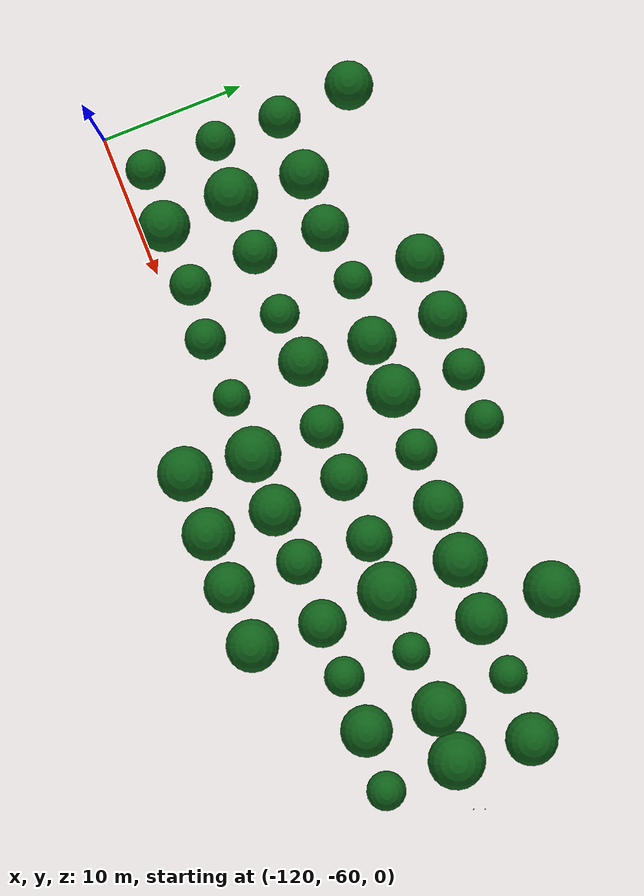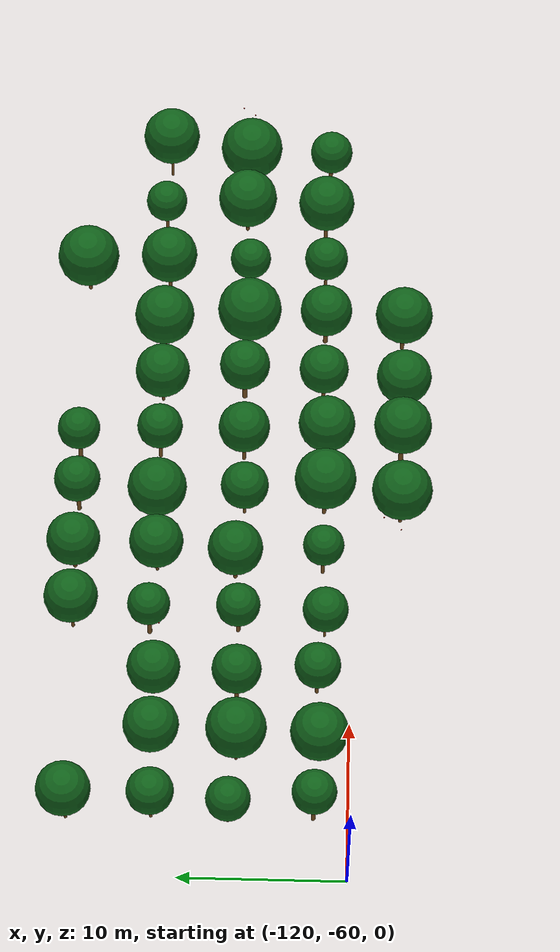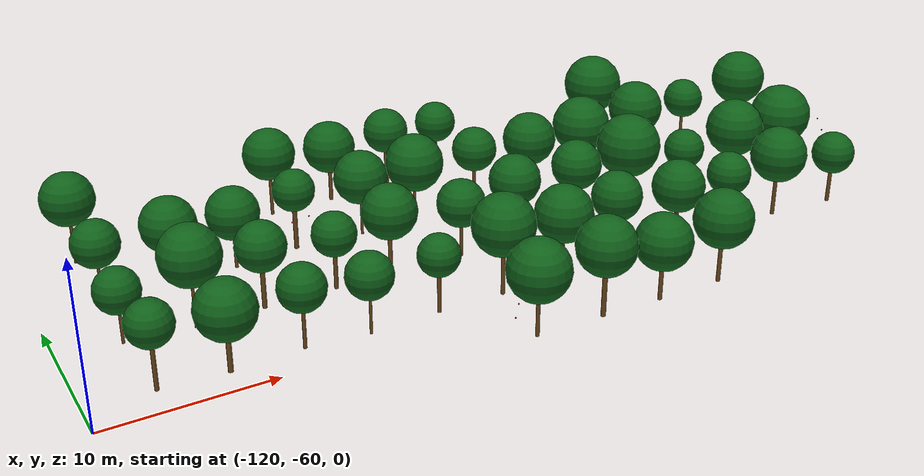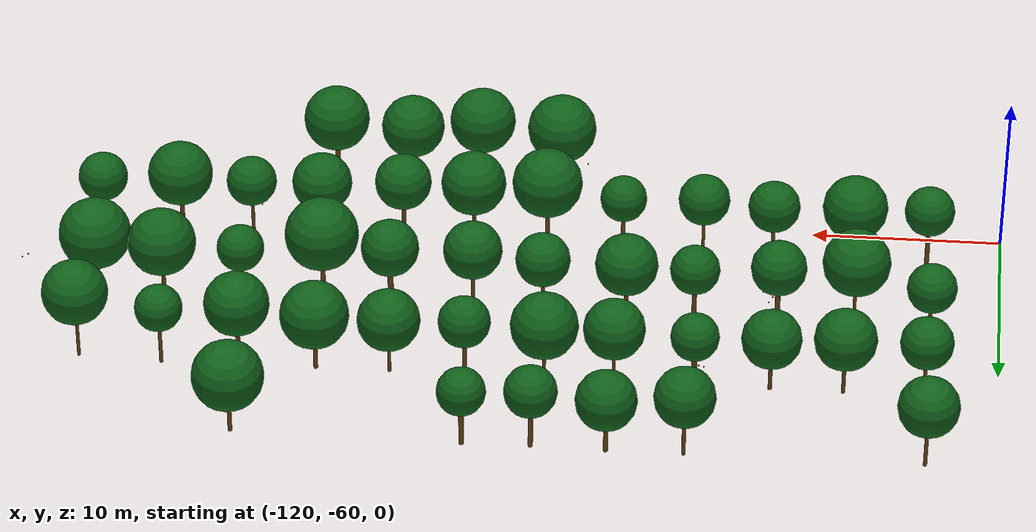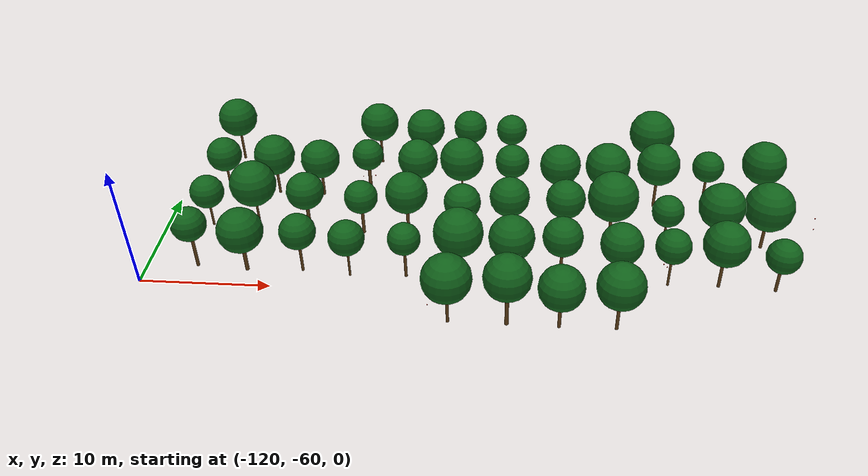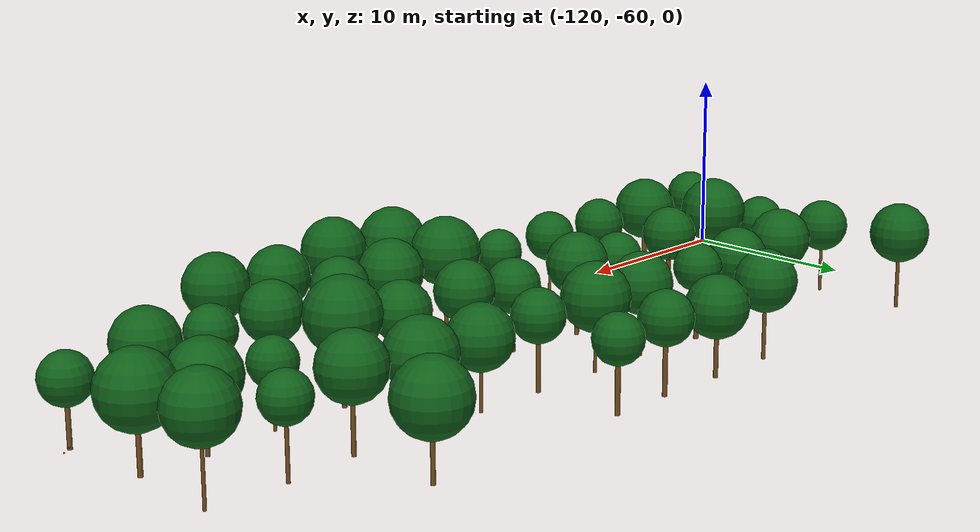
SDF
<sdf version="1.9">
 <world name="cheongsong_orchard">
  <model name="apple_tree_550">
   <static>true</static>
   <pose>-96.38 -62.93 0 0 0 0</pose>
   <link name="link">
    <collision name="trunk_col">
     <pose>0 0 1.17 0 0 0</pose>
     <geometry><cylinder><radius>0.112</radius><length>2.33</length></cylinder></geometry>
    </collision>
    <visual name="trunk_vis">
     <pose>0 0 1.17 0 0 0</pose>
     <geometry><cylinder><radius>0.112</radius><length>2.33</length></cylinder></geometry>
     <material><ambient>0.35 0.22 0.08 1</ambient><diffuse>0.45 0.30 0.12 1</diffuse></material>
    </visual>
    <collision name="canopy_col">
     <pose>0 0 4.16 0 0 0</pose>
     <geometry><sphere><radius>1.83</radius></sphere></geometry>
    </collision>
    <visual name="canopy_vis">
     <pose>0 0 4.16 0 0 0</pose>
     <geometry><sphere><radius>1.83</radius></sphere></geometry>
     <material><ambient>0.04 0.28 0.06 1</ambient><diffuse>0.06 0.38 0.10 1</diffuse></material>
    </visual>
   </link>
  </model>
  <model name="apple_tree_551">
   <static>true</static>
   <pose>-92.14 -62.93 0 0 0 0</pose>
   <link name="link">
    <collision name="trunk_col">
     <pose>0 0 1.36 0 0 0</pose>
     <geometry><cylinder><radius>0.144</radius><length>2.71</length></cylinder></geometry>
    </collision>
    <visual name="trunk_vis">
     <pose>0 0 1.36 0 0 0</pose>
     <geometry><cylinder><radius>0.144</radius><length>2.71</length></cylinder></geometry>
     <material><ambient>0.35 0.22 0.08 1</ambient><diffuse>0.45 0.30 0.12 1</diffuse></material>
    </visual>
    <collision name="canopy_col">
     <pose>0 0 4.47 0 0 0</pose>
     <geometry><sphere><radius>1.75</radius></sphere></geometry>
    </collision>
    <visual name="canopy_vis">
     <pose>0 0 4.47 0 0 0</pose>
     <geometry><sphere><radius>1.75</radius></sphere></geometry>
     <material><ambient>0.04 0.28 0.06 1</ambient><diffuse>0.06 0.38 0.10 1</diffuse></material>
    </visual>
   </link>
  </model>
  <model name="apple_tree_552">
   <static>true</static>
   <pose>-88.39 -63.00 0 0 0 0</pose>
   <link name="link">
    <collision name="trunk_col">
     <pose>0 0 1.03 0 0 0</pose>
     <geometry><cylinder><radius>0.126</radius><length>2.05</length></cylinder></geometry>
    </collision>
    <visual name="trunk_vis">
     <pose>0 0 1.03 0 0 0</pose>
     <geometry><cylinder><radius>0.126</radius><length>2.05</length></cylinder></geometry>
     <material><ambient>0.35 0.22 0.08 1</ambient><diffuse>0.45 0.30 0.12 1</diffuse></material>
    </visual>
    <collision name="canopy_col">
     <pose>0 0 3.74 0 0 0</pose>
     <geometry><sphere><radius>1.68</radius></sphere></geometry>
    </collision>
    <visual name="canopy_vis">
     <pose>0 0 3.74 0 0 0</pose>
     <geometry><sphere><radius>1.68</radius></sphere></geometry>
     <material><ambient>0.04 0.28 0.06 1</ambient><diffuse>0.06 0.38 0.10 1</diffuse></material>
    </visual>
   </link>
  </model>
  <model name="apple_tree_553">
   <static>true</static>
   <pose>-84.30 -62.96 0 0 0 0</pose>
   <link name="link">
    <collision name="trunk_col">
     <pose>0 0 1.18 0 0 0</pose>
     <geometry><cylinder><radius>0.123</radius><length>2.36</length></cylinder></geometry>
    </collision>
    <visual name="trunk_vis">
     <pose>0 0 1.18 0 0 0</pose>
     <geometry><cylinder><radius>0.123</radius><length>2.36</length></cylinder></geometry>
     <material><ambient>0.35 0.22 0.08 1</ambient><diffuse>0.45 0.30 0.12 1</diffuse></material>
    </visual>
    <collision name="canopy_col">
     <pose>0 0 4.11 0 0 0</pose>
     <geometry><sphere><radius>1.75</radius></sphere></geometry>
    </collision>
    <visual name="canopy_vis">
     <pose>0 0 4.11 0 0 0</pose>
     <geometry><sphere><radius>1.75</radius></sphere></geometry>
     <material><ambient>0.04 0.28 0.06 1</ambient><diffuse>0.06 0.38 0.10 1</diffuse></material>
    </visual>
   </link>
  </model>
  <model name="apple_tree_601">
   <static>true</static>
   <pose>-116.09 -57.98 0 0 0 0</pose>
   <link name="link">
    <collision name="trunk_col">
     <pose>0 0 1.37 0 0 0</pose>
     <geometry><cylinder><radius>0.123</radius><length>2.74</length></cylinder></geometry>
    </collision>
    <visual name="trunk_vis">
     <pose>0 0 1.37 0 0 0</pose>
     <geometry><cylinder><radius>0.123</radius><length>2.74</length></cylinder></geometry>
     <material><ambient>0.35 0.22 0.08 1</ambient><diffuse>0.45 0.30 0.12 1</diffuse></material>
    </visual>
    <collision name="canopy_col">
     <pose>0 0 4.07 0 0 0</pose>
     <geometry><sphere><radius>1.33</radius></sphere></geometry>
    </collision>
    <visual name="canopy_vis">
     <pose>0 0 4.07 0 0 0</pose>
     <geometry><sphere><radius>1.33</radius></sphere></geometry>
     <material><ambient>0.04 0.28 0.06 1</ambient><diffuse>0.06 0.38 0.10 1</diffuse></material>
    </visual>
   </link>
  </model>
  <model name="apple_tree_602">
   <static>true</static>
   <pose>-112.18 -58.22 0 0 0 0</pose>
   <link name="link">
    <collision name="trunk_col">
     <pose>0 0 1.06 0 0 0</pose>
     <geometry><cylinder><radius>0.146</radius><length>2.12</length></cylinder></geometry>
    </collision>
    <visual name="trunk_vis">
     <pose>0 0 1.06 0 0 0</pose>
     <geometry><cylinder><radius>0.146</radius><length>2.12</length></cylinder></geometry>
     <material><ambient>0.35 0.22 0.08 1</ambient><diffuse>0.45 0.30 0.12 1</diffuse></material>
    </visual>
    <collision name="canopy_col">
     <pose>0 0 3.85 0 0 0</pose>
     <geometry><sphere><radius>1.73</radius></sphere></geometry>
    </collision>
    <visual name="canopy_vis">
     <pose>0 0 3.85 0 0 0</pose>
     <geometry><sphere><radius>1.73</radius></sphere></geometry>
     <material><ambient>0.04 0.28 0.06 1</ambient><diffuse>0.06 0.38 0.10 1</diffuse></material>
    </visual>
   </link>
  </model>
  <model name="apple_tree_603">
   <static>true</static>
   <pose>-107.91 -58.05 0 0 0 0</pose>
   <link name="link">
    <collision name="trunk_col">
     <pose>0 0 1.21 0 0 0</pose>
     <geometry><cylinder><radius>0.105</radius><length>2.42</length></cylinder></geometry>
    </collision>
    <visual name="trunk_vis">
     <pose>0 0 1.21 0 0 0</pose>
     <geometry><cylinder><radius>0.105</radius><length>2.42</length></cylinder></geometry>
     <material><ambient>0.35 0.22 0.08 1</ambient><diffuse>0.45 0.30 0.12 1</diffuse></material>
    </visual>
    <collision name="canopy_col">
     <pose>0 0 3.80 0 0 0</pose>
     <geometry><sphere><radius>1.38</radius></sphere></geometry>
    </collision>
    <visual name="canopy_vis">
     <pose>0 0 3.80 0 0 0</pose>
     <geometry><sphere><radius>1.38</radius></sphere></geometry>
     <material><ambient>0.04 0.28 0.06 1</ambient><diffuse>0.06 0.38 0.10 1</diffuse></material>
    </visual>
   </link>
  </model>
  <model name="apple_tree_604">
   <static>true</static>
   <pose>-104.20 -58.45 0 0 0 0</pose>
   <link name="link">
    <collision name="trunk_col">
     <pose>0 0 1.16 0 0 0</pose>
     <geometry><cylinder><radius>0.083</radius><length>2.31</length></cylinder></geometry>
    </collision>
    <visual name="trunk_vis">
     <pose>0 0 1.16 0 0 0</pose>
     <geometry><cylinder><radius>0.083</radius><length>2.31</length></cylinder></geometry>
     <material><ambient>0.35 0.22 0.08 1</ambient><diffuse>0.45 0.30 0.12 1</diffuse></material>
    </visual>
    <collision name="canopy_col">
     <pose>0 0 3.68 0 0 0</pose>
     <geometry><sphere><radius>1.37</radius></sphere></geometry>
    </collision>
    <visual name="canopy_vis">
     <pose>0 0 3.68 0 0 0</pose>
     <geometry><sphere><radius>1.37</radius></sphere></geometry>
     <material><ambient>0.04 0.28 0.06 1</ambient><diffuse>0.06 0.38 0.10 1</diffuse></material>
    </visual>
   </link>
  </model>
  <model name="apple_tree_605">
   <static>true</static>
   <pose>-99.94 -58.27 0 0 0 0</pose>
   <link name="link">
    <collision name="trunk_col">
     <pose>0 0 1.20 0 0 0</pose>
     <geometry><cylinder><radius>0.112</radius><length>2.41</length></cylinder></geometry>
    </collision>
    <visual name="trunk_vis">
     <pose>0 0 1.20 0 0 0</pose>
     <geometry><cylinder><radius>0.112</radius><length>2.41</length></cylinder></geometry>
     <material><ambient>0.35 0.22 0.08 1</ambient><diffuse>0.45 0.30 0.12 1</diffuse></material>
    </visual>
    <collision name="canopy_col">
     <pose>0 0 3.65 0 0 0</pose>
     <geometry><sphere><radius>1.24</radius></sphere></geometry>
    </collision>
    <visual name="canopy_vis">
     <pose>0 0 3.65 0 0 0</pose>
     <geometry><sphere><radius>1.24</radius></sphere></geometry>
     <material><ambient>0.04 0.28 0.06 1</ambient><diffuse>0.06 0.38 0.10 1</diffuse></material>
    </visual>
   </link>
  </model>
  <model name="apple_tree_606">
   <static>true</static>
   <pose>-95.90 -58.30 0 0 0 0</pose>
   <link name="link">
    <collision name="trunk_col">
     <pose>0 0 1.32 0 0 0</pose>
     <geometry><cylinder><radius>0.116</radius><length>2.64</length></cylinder></geometry>
    </collision>
    <visual name="trunk_vis">
     <pose>0 0 1.32 0 0 0</pose>
     <geometry><cylinder><radius>0.116</radius><length>2.64</length></cylinder></geometry>
     <material><ambient>0.35 0.22 0.08 1</ambient><diffuse>0.45 0.30 0.12 1</diffuse></material>
    </visual>
    <collision name="canopy_col">
     <pose>0 0 4.50 0 0 0</pose>
     <geometry><sphere><radius>1.86</radius></sphere></geometry>
    </collision>
    <visual name="canopy_vis">
     <pose>0 0 4.50 0 0 0</pose>
     <geometry><sphere><radius>1.86</radius></sphere></geometry>
     <material><ambient>0.04 0.28 0.06 1</ambient><diffuse>0.06 0.38 0.10 1</diffuse></material>
    </visual>
   </link>
  </model>
  <model name="apple_tree_607">
   <static>true</static>
   <pose>-91.99 -58.33 0 0 0 0</pose>
   <link name="link">
    <collision name="trunk_col">
     <pose>0 0 1.24 0 0 0</pose>
     <geometry><cylinder><radius>0.092</radius><length>2.48</length></cylinder></geometry>
    </collision>
    <visual name="trunk_vis">
     <pose>0 0 1.24 0 0 0</pose>
     <geometry><cylinder><radius>0.092</radius><length>2.48</length></cylinder></geometry>
     <material><ambient>0.35 0.22 0.08 1</ambient><diffuse>0.45 0.30 0.12 1</diffuse></material>
    </visual>
    <collision name="canopy_col">
     <pose>0 0 4.20 0 0 0</pose>
     <geometry><sphere><radius>1.72</radius></sphere></geometry>
    </collision>
    <visual name="canopy_vis">
     <pose>0 0 4.20 0 0 0</pose>
     <geometry><sphere><radius>1.72</radius></sphere></geometry>
     <material><ambient>0.04 0.28 0.06 1</ambient><diffuse>0.06 0.38 0.10 1</diffuse></material>
    </visual>
   </link>
  </model>
  <model name="apple_tree_608">
   <static>true</static>
   <pose>-88.27 -58.10 0 0 0 0</pose>
   <link name="link">
    <collision name="trunk_col">
     <pose>0 0 1.38 0 0 0</pose>
     <geometry><cylinder><radius>0.116</radius><length>2.76</length></cylinder></geometry>
    </collision>
    <visual name="trunk_vis">
     <pose>0 0 1.38 0 0 0</pose>
     <geometry><cylinder><radius>0.116</radius><length>2.76</length></cylinder></geometry>
     <material><ambient>0.35 0.22 0.08 1</ambient><diffuse>0.45 0.30 0.12 1</diffuse></material>
    </visual>
    <collision name="canopy_col">
     <pose>0 0 4.27 0 0 0</pose>
     <geometry><sphere><radius>1.50</radius></sphere></geometry>
    </collision>
    <visual name="canopy_vis">
     <pose>0 0 4.27 0 0 0</pose>
     <geometry><sphere><radius>1.50</radius></sphere></geometry>
     <material><ambient>0.04 0.28 0.06 1</ambient><diffuse>0.06 0.38 0.10 1</diffuse></material>
    </visual>
   </link>
  </model>
  <model name="apple_tree_609">
   <static>true</static>
   <pose>-83.95 -58.18 0 0 0 0</pose>
   <link name="link">
    <collision name="trunk_col">
     <pose>0 0 1.15 0 0 0</pose>
     <geometry><cylinder><radius>0.141</radius><length>2.29</length></cylinder></geometry>
    </collision>
    <visual name="trunk_vis">
     <pose>0 0 1.15 0 0 0</pose>
     <geometry><cylinder><radius>0.141</radius><length>2.29</length></cylinder></geometry>
     <material><ambient>0.35 0.22 0.08 1</ambient><diffuse>0.45 0.30 0.12 1</diffuse></material>
    </visual>
    <collision name="canopy_col">
     <pose>0 0 3.88 0 0 0</pose>
     <geometry><sphere><radius>1.59</radius></sphere></geometry>
    </collision>
    <visual name="canopy_vis">
     <pose>0 0 3.88 0 0 0</pose>
     <geometry><sphere><radius>1.59</radius></sphere></geometry>
     <material><ambient>0.04 0.28 0.06 1</ambient><diffuse>0.06 0.38 0.10 1</diffuse></material>
    </visual>
   </link>
  </model>
  <model name="apple_tree_610">
   <static>true</static>
   <pose>-80.20 -58.13 0 0 0 0</pose>
   <link name="link">
    <collision name="trunk_col">
     <pose>0 0 1.22 0 0 0</pose>
     <geometry><cylinder><radius>0.090</radius><length>2.44</length></cylinder></geometry>
    </collision>
    <visual name="trunk_vis">
     <pose>0 0 1.22 0 0 0</pose>
     <geometry><cylinder><radius>0.090</radius><length>2.44</length></cylinder></geometry>
     <material><ambient>0.35 0.22 0.08 1</ambient><diffuse>0.45 0.30 0.12 1</diffuse></material>
    </visual>
    <collision name="canopy_col">
     <pose>0 0 3.77 0 0 0</pose>
     <geometry><sphere><radius>1.33</radius></sphere></geometry>
    </collision>
    <visual name="canopy_vis">
     <pose>0 0 3.77 0 0 0</pose>
     <geometry><sphere><radius>1.33</radius></sphere></geometry>
     <material><ambient>0.04 0.28 0.06 1</ambient><diffuse>0.06 0.38 0.10 1</diffuse></material>
    </visual>
   </link>
  </model>
  <model name="apple_tree_611">
   <static>true</static>
   <pose>-76.42 -58.08 0 0 0 0</pose>
   <link name="link">
    <collision name="trunk_col">
     <pose>0 0 1.21 0 0 0</pose>
     <geometry><cylinder><radius>0.121</radius><length>2.42</length></cylinder></geometry>
    </collision>
    <visual name="trunk_vis">
     <pose>0 0 1.21 0 0 0</pose>
     <geometry><cylinder><radius>0.121</radius><length>2.42</length></cylinder></geometry>
     <material><ambient>0.35 0.22 0.08 1</ambient><diffuse>0.45 0.30 0.12 1</diffuse></material>
    </visual>
    <collision name="canopy_col">
     <pose>0 0 4.13 0 0 0</pose>
     <geometry><sphere><radius>1.72</radius></sphere></geometry>
    </collision>
    <visual name="canopy_vis">
     <pose>0 0 4.13 0 0 0</pose>
     <geometry><sphere><radius>1.72</radius></sphere></geometry>
     <material><ambient>0.04 0.28 0.06 1</ambient><diffuse>0.06 0.38 0.10 1</diffuse></material>
    </visual>
   </link>
  </model>
  <model name="apple_tree_612">
   <static>true</static>
   <pose>-72.24 -58.34 0 0 0 0</pose>
   <link name="link">
    <collision name="trunk_col">
     <pose>0 0 1.04 0 0 0</pose>
     <geometry><cylinder><radius>0.121</radius><length>2.07</length></cylinder></geometry>
    </collision>
    <visual name="trunk_vis">
     <pose>0 0 1.04 0 0 0</pose>
     <geometry><cylinder><radius>0.121</radius><length>2.07</length></cylinder></geometry>
     <material><ambient>0.35 0.22 0.08 1</ambient><diffuse>0.45 0.30 0.12 1</diffuse></material>
    </visual>
    <collision name="canopy_col">
     <pose>0 0 3.38 0 0 0</pose>
     <geometry><sphere><radius>1.31</radius></sphere></geometry>
    </collision>
    <visual name="canopy_vis">
     <pose>0 0 3.38 0 0 0</pose>
     <geometry><sphere><radius>1.31</radius></sphere></geometry>
     <material><ambient>0.04 0.28 0.06 1</ambient><diffuse>0.06 0.38 0.10 1</diffuse></material>
    </visual>
   </link>
  </model>
  <model name="apple_tree_658">
   <static>true</static>
   <pose>-116.34 -52.97 0 0 0 0</pose>
   <link name="link">
    <collision name="trunk_col">
     <pose>0 0 1.00 0 0 0</pose>
     <geometry><cylinder><radius>0.087</radius><length>2.00</length></cylinder></geometry>
    </collision>
    <visual name="trunk_vis">
     <pose>0 0 1.00 0 0 0</pose>
     <geometry><cylinder><radius>0.087</radius><length>2.00</length></cylinder></geometry>
     <material><ambient>0.35 0.22 0.08 1</ambient><diffuse>0.45 0.30 0.12 1</diffuse></material>
    </visual>
    <collision name="canopy_col">
     <pose>0 0 3.33 0 0 0</pose>
     <geometry><sphere><radius>1.33</radius></sphere></geometry>
    </collision>
    <visual name="canopy_vis">
     <pose>0 0 3.33 0 0 0</pose>
     <geometry><sphere><radius>1.33</radius></sphere></geometry>
     <material><ambient>0.04 0.28 0.06 1</ambient><diffuse>0.06 0.38 0.10 1</diffuse></material>
    </visual>
   </link>
  </model>
  <model name="apple_tree_659">
   <static>true</static>
   <pose>-112.36 -53.34 0 0 0 0</pose>
   <link name="link">
    <collision name="trunk_col">
     <pose>0 0 1.38 0 0 0</pose>
     <geometry><cylinder><radius>0.087</radius><length>2.77</length></cylinder></geometry>
    </collision>
    <visual name="trunk_vis">
     <pose>0 0 1.38 0 0 0</pose>
     <geometry><cylinder><radius>0.087</radius><length>2.77</length></cylinder></geometry>
     <material><ambient>0.35 0.22 0.08 1</ambient><diffuse>0.45 0.30 0.12 1</diffuse></material>
    </visual>
    <collision name="canopy_col">
     <pose>0 0 4.56 0 0 0</pose>
     <geometry><sphere><radius>1.80</radius></sphere></geometry>
    </collision>
    <visual name="canopy_vis">
     <pose>0 0 4.56 0 0 0</pose>
     <geometry><sphere><radius>1.80</radius></sphere></geometry>
     <material><ambient>0.04 0.28 0.06 1</ambient><diffuse>0.06 0.38 0.10 1</diffuse></material>
    </visual>
   </link>
  </model>
  <model name="apple_tree_660">
   <static>true</static>
   <pose>-108.33 -53.27 0 0 0 0</pose>
   <link name="link">
    <collision name="trunk_col">
     <pose>0 0 1.25 0 0 0</pose>
     <geometry><cylinder><radius>0.137</radius><length>2.49</length></cylinder></geometry>
    </collision>
    <visual name="trunk_vis">
     <pose>0 0 1.25 0 0 0</pose>
     <geometry><cylinder><radius>0.137</radius><length>2.49</length></cylinder></geometry>
     <material><ambient>0.35 0.22 0.08 1</ambient><diffuse>0.45 0.30 0.12 1</diffuse></material>
    </visual>
    <collision name="canopy_col">
     <pose>0 0 3.97 0 0 0</pose>
     <geometry><sphere><radius>1.48</radius></sphere></geometry>
    </collision>
    <visual name="canopy_vis">
     <pose>0 0 3.97 0 0 0</pose>
     <geometry><sphere><radius>1.48</radius></sphere></geometry>
     <material><ambient>0.04 0.28 0.06 1</ambient><diffuse>0.06 0.38 0.10 1</diffuse></material>
    </visual>
   </link>
  </model>
  <model name="apple_tree_661">
   <static>true</static>
   <pose>-103.96 -53.26 0 0 0 0</pose>
   <link name="link">
    <collision name="trunk_col">
     <pose>0 0 1.11 0 0 0</pose>
     <geometry><cylinder><radius>0.124</radius><length>2.23</length></cylinder></geometry>
    </collision>
    <visual name="trunk_vis">
     <pose>0 0 1.11 0 0 0</pose>
     <geometry><cylinder><radius>0.124</radius><length>2.23</length></cylinder></geometry>
     <material><ambient>0.35 0.22 0.08 1</ambient><diffuse>0.45 0.30 0.12 1</diffuse></material>
    </visual>
    <collision name="canopy_col">
     <pose>0 0 3.55 0 0 0</pose>
     <geometry><sphere><radius>1.32</radius></sphere></geometry>
    </collision>
    <visual name="canopy_vis">
     <pose>0 0 3.55 0 0 0</pose>
     <geometry><sphere><radius>1.32</radius></sphere></geometry>
     <material><ambient>0.04 0.28 0.06 1</ambient><diffuse>0.06 0.38 0.10 1</diffuse></material>
    </visual>
   </link>
  </model>
  <model name="apple_tree_662">
   <static>true</static>
   <pose>-100.39 -53.00 0 0 0 0</pose>
   <link name="link">
    <collision name="trunk_col">
     <pose>0 0 1.14 0 0 0</pose>
     <geometry><cylinder><radius>0.124</radius><length>2.28</length></cylinder></geometry>
    </collision>
    <visual name="trunk_vis">
     <pose>0 0 1.14 0 0 0</pose>
     <geometry><cylinder><radius>0.124</radius><length>2.28</length></cylinder></geometry>
     <material><ambient>0.35 0.22 0.08 1</ambient><diffuse>0.45 0.30 0.12 1</diffuse></material>
    </visual>
    <collision name="canopy_col">
     <pose>0 0 3.94 0 0 0</pose>
     <geometry><sphere><radius>1.66</radius></sphere></geometry>
    </collision>
    <visual name="canopy_vis">
     <pose>0 0 3.94 0 0 0</pose>
     <geometry><sphere><radius>1.66</radius></sphere></geometry>
     <material><ambient>0.04 0.28 0.06 1</ambient><diffuse>0.06 0.38 0.10 1</diffuse></material>
    </visual>
   </link>
  </model>
  <model name="apple_tree_663">
   <static>true</static>
   <pose>-95.98 -53.45 0 0 0 0</pose>
   <link name="link">
    <collision name="trunk_col">
     <pose>0 0 1.05 0 0 0</pose>
     <geometry><cylinder><radius>0.096</radius><length>2.11</length></cylinder></geometry>
    </collision>
    <visual name="trunk_vis">
     <pose>0 0 1.05 0 0 0</pose>
     <geometry><cylinder><radius>0.096</radius><length>2.11</length></cylinder></geometry>
     <material><ambient>0.35 0.22 0.08 1</ambient><diffuse>0.45 0.30 0.12 1</diffuse></material>
    </visual>
    <collision name="canopy_col">
     <pose>0 0 3.56 0 0 0</pose>
     <geometry><sphere><radius>1.45</radius></sphere></geometry>
    </collision>
    <visual name="canopy_vis">
     <pose>0 0 3.56 0 0 0</pose>
     <geometry><sphere><radius>1.45</radius></sphere></geometry>
     <material><ambient>0.04 0.28 0.06 1</ambient><diffuse>0.06 0.38 0.10 1</diffuse></material>
    </visual>
   </link>
  </model>
  <model name="apple_tree_664">
   <static>true</static>
   <pose>-92.31 -53.33 0 0 0 0</pose>
   <link name="link">
    <collision name="trunk_col">
     <pose>0 0 1.29 0 0 0</pose>
     <geometry><cylinder><radius>0.099</radius><length>2.58</length></cylinder></geometry>
    </collision>
    <visual name="trunk_vis">
     <pose>0 0 1.29 0 0 0</pose>
     <geometry><cylinder><radius>0.099</radius><length>2.58</length></cylinder></geometry>
     <material><ambient>0.35 0.22 0.08 1</ambient><diffuse>0.45 0.30 0.12 1</diffuse></material>
    </visual>
    <collision name="canopy_col">
     <pose>0 0 4.13 0 0 0</pose>
     <geometry><sphere><radius>1.56</radius></sphere></geometry>
    </collision>
    <visual name="canopy_vis">
     <pose>0 0 4.13 0 0 0</pose>
     <geometry><sphere><radius>1.56</radius></sphere></geometry>
     <material><ambient>0.04 0.28 0.06 1</ambient><diffuse>0.06 0.38 0.10 1</diffuse></material>
    </visual>
   </link>
  </model>
  <model name="apple_tree_665">
   <static>true</static>
   <pose>-87.97 -53.27 0 0 0 0</pose>
   <link name="link">
    <collision name="trunk_col">
     <pose>0 0 1.26 0 0 0</pose>
     <geometry><cylinder><radius>0.148</radius><length>2.52</length></cylinder></geometry>
    </collision>
    <visual name="trunk_vis">
     <pose>0 0 1.26 0 0 0</pose>
     <geometry><cylinder><radius>0.148</radius><length>2.52</length></cylinder></geometry>
     <material><ambient>0.35 0.22 0.08 1</ambient><diffuse>0.45 0.30 0.12 1</diffuse></material>
    </visual>
    <collision name="canopy_col">
     <pose>0 0 4.05 0 0 0</pose>
     <geometry><sphere><radius>1.53</radius></sphere></geometry>
    </collision>
    <visual name="canopy_vis">
     <pose>0 0 4.05 0 0 0</pose>
     <geometry><sphere><radius>1.53</radius></sphere></geometry>
     <material><ambient>0.04 0.28 0.06 1</ambient><diffuse>0.06 0.38 0.10 1</diffuse></material>
    </visual>
   </link>
  </model>
  <model name="apple_tree_666">
   <static>true</static>
   <pose>-84.38 -53.48 0 0 0 0</pose>
   <link name="link">
    <collision name="trunk_col">
     <pose>0 0 1.33 0 0 0</pose>
     <geometry><cylinder><radius>0.126</radius><length>2.66</length></cylinder></geometry>
    </collision>
    <visual name="trunk_vis">
     <pose>0 0 1.33 0 0 0</pose>
     <geometry><cylinder><radius>0.126</radius><length>2.66</length></cylinder></geometry>
     <material><ambient>0.35 0.22 0.08 1</ambient><diffuse>0.45 0.30 0.12 1</diffuse></material>
    </visual>
    <collision name="canopy_col">
     <pose>0 0 4.61 0 0 0</pose>
     <geometry><sphere><radius>1.95</radius></sphere></geometry>
    </collision>
    <visual name="canopy_vis">
     <pose>0 0 4.61 0 0 0</pose>
     <geometry><sphere><radius>1.95</radius></sphere></geometry>
     <material><ambient>0.04 0.28 0.06 1</ambient><diffuse>0.06 0.38 0.10 1</diffuse></material>
    </visual>
   </link>
  </model>
  <model name="apple_tree_667">
   <static>true</static>
   <pose>-80.07 -53.44 0 0 0 0</pose>
   <link name="link">
    <collision name="trunk_col">
     <pose>0 0 1.06 0 0 0</pose>
     <geometry><cylinder><radius>0.087</radius><length>2.11</length></cylinder></geometry>
    </collision>
    <visual name="trunk_vis">
     <pose>0 0 1.06 0 0 0</pose>
     <geometry><cylinder><radius>0.087</radius><length>2.11</length></cylinder></geometry>
     <material><ambient>0.35 0.22 0.08 1</ambient><diffuse>0.45 0.30 0.12 1</diffuse></material>
    </visual>
    <collision name="canopy_col">
     <pose>0 0 3.36 0 0 0</pose>
     <geometry><sphere><radius>1.25</radius></sphere></geometry>
    </collision>
    <visual name="canopy_vis">
     <pose>0 0 3.36 0 0 0</pose>
     <geometry><sphere><radius>1.25</radius></sphere></geometry>
     <material><ambient>0.04 0.28 0.06 1</ambient><diffuse>0.06 0.38 0.10 1</diffuse></material>
    </visual>
   </link>
  </model>
  <model name="apple_tree_668">
   <static>true</static>
   <pose>-75.96 -53.16 0 0 0 0</pose>
   <link name="link">
    <collision name="trunk_col">
     <pose>0 0 0.99 0 0 0</pose>
     <geometry><cylinder><radius>0.108</radius><length>1.98</length></cylinder></geometry>
    </collision>
    <visual name="trunk_vis">
     <pose>0 0 0.99 0 0 0</pose>
     <geometry><cylinder><radius>0.108</radius><length>1.98</length></cylinder></geometry>
     <material><ambient>0.35 0.22 0.08 1</ambient><diffuse>0.45 0.30 0.12 1</diffuse></material>
    </visual>
    <collision name="canopy_col">
     <pose>0 0 3.79 0 0 0</pose>
     <geometry><sphere><radius>1.81</radius></sphere></geometry>
    </collision>
    <visual name="canopy_vis">
     <pose>0 0 3.79 0 0 0</pose>
     <geometry><sphere><radius>1.81</radius></sphere></geometry>
     <material><ambient>0.04 0.28 0.06 1</ambient><diffuse>0.06 0.38 0.10 1</diffuse></material>
    </visual>
   </link>
  </model>
  <model name="apple_tree_669">
   <static>true</static>
   <pose>-72.44 -53.33 0 0 0 0</pose>
   <link name="link">
    <collision name="trunk_col">
     <pose>0 0 1.05 0 0 0</pose>
     <geometry><cylinder><radius>0.126</radius><length>2.10</length></cylinder></geometry>
    </collision>
    <visual name="trunk_vis">
     <pose>0 0 1.05 0 0 0</pose>
     <geometry><cylinder><radius>0.126</radius><length>2.10</length></cylinder></geometry>
     <material><ambient>0.35 0.22 0.08 1</ambient><diffuse>0.45 0.30 0.12 1</diffuse></material>
    </visual>
    <collision name="canopy_col">
     <pose>0 0 4.01 0 0 0</pose>
     <geometry><sphere><radius>1.91</radius></sphere></geometry>
    </collision>
    <visual name="canopy_vis">
     <pose>0 0 4.01 0 0 0</pose>
     <geometry><sphere><radius>1.91</radius></sphere></geometry>
     <material><ambient>0.04 0.28 0.06 1</ambient><diffuse>0.06 0.38 0.10 1</diffuse></material>
    </visual>
   </link>
  </model>
  <model name="apple_tree_717">
   <static>true</static>
   <pose>-116.15 -48.43 0 0 0 0</pose>
   <link name="link">
    <collision name="trunk_col">
     <pose>0 0 1.20 0 0 0</pose>
     <geometry><cylinder><radius>0.091</radius><length>2.40</length></cylinder></geometry>
    </collision>
    <visual name="trunk_vis">
     <pose>0 0 1.20 0 0 0</pose>
     <geometry><cylinder><radius>0.091</radius><length>2.40</length></cylinder></geometry>
     <material><ambient>0.35 0.22 0.08 1</ambient><diffuse>0.45 0.30 0.12 1</diffuse></material>
    </visual>
    <collision name="canopy_col">
     <pose>0 0 3.81 0 0 0</pose>
     <geometry><sphere><radius>1.41</radius></sphere></geometry>
    </collision>
    <visual name="canopy_vis">
     <pose>0 0 3.81 0 0 0</pose>
     <geometry><sphere><radius>1.41</radius></sphere></geometry>
     <material><ambient>0.04 0.28 0.06 1</ambient><diffuse>0.06 0.38 0.10 1</diffuse></material>
    </visual>
   </link>
  </model>
  <model name="apple_tree_718">
   <static>true</static>
   <pose>-111.96 -48.34 0 0 0 0</pose>
   <link name="link">
    <collision name="trunk_col">
     <pose>0 0 1.10 0 0 0</pose>
     <geometry><cylinder><radius>0.101</radius><length>2.20</length></cylinder></geometry>
    </collision>
    <visual name="trunk_vis">
     <pose>0 0 1.10 0 0 0</pose>
     <geometry><cylinder><radius>0.101</radius><length>2.20</length></cylinder></geometry>
     <material><ambient>0.35 0.22 0.08 1</ambient><diffuse>0.45 0.30 0.12 1</diffuse></material>
    </visual>
    <collision name="canopy_col">
     <pose>0 0 3.86 0 0 0</pose>
     <geometry><sphere><radius>1.66</radius></sphere></geometry>
    </collision>
    <visual name="canopy_vis">
     <pose>0 0 3.86 0 0 0</pose>
     <geometry><sphere><radius>1.66</radius></sphere></geometry>
     <material><ambient>0.04 0.28 0.06 1</ambient><diffuse>0.06 0.38 0.10 1</diffuse></material>
    </visual>
   </link>
  </model>
  <model name="apple_tree_719">
   <static>true</static>
   <pose>-108.15 -48.36 0 0 0 0</pose>
   <link name="link">
    <collision name="trunk_col">
     <pose>0 0 1.01 0 0 0</pose>
     <geometry><cylinder><radius>0.103</radius><length>2.03</length></cylinder></geometry>
    </collision>
    <visual name="trunk_vis">
     <pose>0 0 1.01 0 0 0</pose>
     <geometry><cylinder><radius>0.103</radius><length>2.03</length></cylinder></geometry>
     <material><ambient>0.35 0.22 0.08 1</ambient><diffuse>0.45 0.30 0.12 1</diffuse></material>
    </visual>
    <collision name="canopy_col">
     <pose>0 0 3.61 0 0 0</pose>
     <geometry><sphere><radius>1.59</radius></sphere></geometry>
    </collision>
    <visual name="canopy_vis">
     <pose>0 0 3.61 0 0 0</pose>
     <geometry><sphere><radius>1.59</radius></sphere></geometry>
     <material><ambient>0.04 0.28 0.06 1</ambient><diffuse>0.06 0.38 0.10 1</diffuse></material>
    </visual>
   </link>
  </model>
  <model name="apple_tree_720">
   <static>true</static>
   <pose>-104.20 -47.95 0 0 0 0</pose>
   <link name="link">
    <collision name="trunk_col">
     <pose>0 0 1.32 0 0 0</pose>
     <geometry><cylinder><radius>0.137</radius><length>2.64</length></cylinder></geometry>
    </collision>
    <visual name="trunk_vis">
     <pose>0 0 1.32 0 0 0</pose>
     <geometry><cylinder><radius>0.137</radius><length>2.64</length></cylinder></geometry>
     <material><ambient>0.35 0.22 0.08 1</ambient><diffuse>0.45 0.30 0.12 1</diffuse></material>
    </visual>
    <collision name="canopy_col">
     <pose>0 0 3.91 0 0 0</pose>
     <geometry><sphere><radius>1.28</radius></sphere></geometry>
    </collision>
    <visual name="canopy_vis">
     <pose>0 0 3.91 0 0 0</pose>
     <geometry><sphere><radius>1.28</radius></sphere></geometry>
     <material><ambient>0.04 0.28 0.06 1</ambient><diffuse>0.06 0.38 0.10 1</diffuse></material>
    </visual>
   </link>
  </model>
  <model name="apple_tree_721">
   <static>true</static>
   <pose>-100.02 -48.26 0 0 0 0</pose>
   <link name="link">
    <collision name="trunk_col">
     <pose>0 0 1.12 0 0 0</pose>
     <geometry><cylinder><radius>0.083</radius><length>2.25</length></cylinder></geometry>
    </collision>
    <visual name="trunk_vis">
     <pose>0 0 1.12 0 0 0</pose>
     <geometry><cylinder><radius>0.083</radius><length>2.25</length></cylinder></geometry>
     <material><ambient>0.35 0.22 0.08 1</ambient><diffuse>0.45 0.30 0.12 1</diffuse></material>
    </visual>
    <collision name="canopy_col">
     <pose>0 0 3.88 0 0 0</pose>
     <geometry><sphere><radius>1.63</radius></sphere></geometry>
    </collision>
    <visual name="canopy_vis">
     <pose>0 0 3.88 0 0 0</pose>
     <geometry><sphere><radius>1.63</radius></sphere></geometry>
     <material><ambient>0.04 0.28 0.06 1</ambient><diffuse>0.06 0.38 0.10 1</diffuse></material>
    </visual>
   </link>
  </model>
  <model name="apple_tree_722">
   <static>true</static>
   <pose>-96.40 -48.19 0 0 0 0</pose>
   <link name="link">
    <collision name="trunk_col">
     <pose>0 0 1.08 0 0 0</pose>
     <geometry><cylinder><radius>0.084</radius><length>2.17</length></cylinder></geometry>
    </collision>
    <visual name="trunk_vis">
     <pose>0 0 1.08 0 0 0</pose>
     <geometry><cylinder><radius>0.084</radius><length>2.17</length></cylinder></geometry>
     <material><ambient>0.35 0.22 0.08 1</ambient><diffuse>0.45 0.30 0.12 1</diffuse></material>
    </visual>
    <collision name="canopy_col">
     <pose>0 0 3.95 0 0 0</pose>
     <geometry><sphere><radius>1.79</radius></sphere></geometry>
    </collision>
    <visual name="canopy_vis">
     <pose>0 0 3.95 0 0 0</pose>
     <geometry><sphere><radius>1.79</radius></sphere></geometry>
     <material><ambient>0.04 0.28 0.06 1</ambient><diffuse>0.06 0.38 0.10 1</diffuse></material>
    </visual>
   </link>
  </model>
  <model name="apple_tree_723">
   <static>true</static>
   <pose>-92.25 -48.22 0 0 0 0</pose>
   <link name="link">
    <collision name="trunk_col">
     <pose>0 0 1.27 0 0 0</pose>
     <geometry><cylinder><radius>0.115</radius><length>2.53</length></cylinder></geometry>
    </collision>
    <visual name="trunk_vis">
     <pose>0 0 1.27 0 0 0</pose>
     <geometry><cylinder><radius>0.115</radius><length>2.53</length></cylinder></geometry>
     <material><ambient>0.35 0.22 0.08 1</ambient><diffuse>0.45 0.30 0.12 1</diffuse></material>
    </visual>
    <collision name="canopy_col">
     <pose>0 0 3.91 0 0 0</pose>
     <geometry><sphere><radius>1.38</radius></sphere></geometry>
    </collision>
    <visual name="canopy_vis">
     <pose>0 0 3.91 0 0 0</pose>
     <geometry><sphere><radius>1.38</radius></sphere></geometry>
     <material><ambient>0.04 0.28 0.06 1</ambient><diffuse>0.06 0.38 0.10 1</diffuse></material>
    </visual>
   </link>
  </model>
  <model name="apple_tree_724">
   <static>true</static>
   <pose>-88.32 -48.25 0 0 0 0</pose>
   <link name="link">
    <collision name="trunk_col">
     <pose>0 0 1.04 0 0 0</pose>
     <geometry><cylinder><radius>0.086</radius><length>2.08</length></cylinder></geometry>
    </collision>
    <visual name="trunk_vis">
     <pose>0 0 1.04 0 0 0</pose>
     <geometry><cylinder><radius>0.086</radius><length>2.08</length></cylinder></geometry>
     <material><ambient>0.35 0.22 0.08 1</ambient><diffuse>0.45 0.30 0.12 1</diffuse></material>
    </visual>
    <collision name="canopy_col">
     <pose>0 0 3.74 0 0 0</pose>
     <geometry><sphere><radius>1.66</radius></sphere></geometry>
    </collision>
    <visual name="canopy_vis">
     <pose>0 0 3.74 0 0 0</pose>
     <geometry><sphere><radius>1.66</radius></sphere></geometry>
     <material><ambient>0.04 0.28 0.06 1</ambient><diffuse>0.06 0.38 0.10 1</diffuse></material>
    </visual>
   </link>
  </model>
  <model name="apple_tree_725">
   <static>true</static>
   <pose>-84.46 -48.25 0 0 0 0</pose>
   <link name="link">
    <collision name="trunk_col">
     <pose>0 0 1.02 0 0 0</pose>
     <geometry><cylinder><radius>0.115</radius><length>2.03</length></cylinder></geometry>
    </collision>
    <visual name="trunk_vis">
     <pose>0 0 1.02 0 0 0</pose>
     <geometry><cylinder><radius>0.115</radius><length>2.03</length></cylinder></geometry>
     <material><ambient>0.35 0.22 0.08 1</ambient><diffuse>0.45 0.30 0.12 1</diffuse></material>
    </visual>
    <collision name="canopy_col">
     <pose>0 0 3.85 0 0 0</pose>
     <geometry><sphere><radius>1.82</radius></sphere></geometry>
    </collision>
    <visual name="canopy_vis">
     <pose>0 0 3.85 0 0 0</pose>
     <geometry><sphere><radius>1.82</radius></sphere></geometry>
     <material><ambient>0.04 0.28 0.06 1</ambient><diffuse>0.06 0.38 0.10 1</diffuse></material>
    </visual>
   </link>
  </model>
  <model name="apple_tree_726">
   <static>true</static>
   <pose>-80.41 -48.41 0 0 0 0</pose>
   <link name="link">
    <collision name="trunk_col">
     <pose>0 0 1.25 0 0 0</pose>
     <geometry><cylinder><radius>0.114</radius><length>2.50</length></cylinder></geometry>
    </collision>
    <visual name="trunk_vis">
     <pose>0 0 1.25 0 0 0</pose>
     <geometry><cylinder><radius>0.114</radius><length>2.50</length></cylinder></geometry>
     <material><ambient>0.35 0.22 0.08 1</ambient><diffuse>0.45 0.30 0.12 1</diffuse></material>
    </visual>
    <collision name="canopy_col">
     <pose>0 0 4.22 0 0 0</pose>
     <geometry><sphere><radius>1.72</radius></sphere></geometry>
    </collision>
    <visual name="canopy_vis">
     <pose>0 0 4.22 0 0 0</pose>
     <geometry><sphere><radius>1.72</radius></sphere></geometry>
     <material><ambient>0.04 0.28 0.06 1</ambient><diffuse>0.06 0.38 0.10 1</diffuse></material>
    </visual>
   </link>
  </model>
  <model name="apple_tree_727">
   <static>true</static>
   <pose>-76.37 -48.12 0 0 0 0</pose>
   <link name="link">
    <collision name="trunk_col">
     <pose>0 0 1.33 0 0 0</pose>
     <geometry><cylinder><radius>0.097</radius><length>2.67</length></cylinder></geometry>
    </collision>
    <visual name="trunk_vis">
     <pose>0 0 1.33 0 0 0</pose>
     <geometry><cylinder><radius>0.097</radius><length>2.67</length></cylinder></geometry>
     <material><ambient>0.35 0.22 0.08 1</ambient><diffuse>0.45 0.30 0.12 1</diffuse></material>
    </visual>
    <collision name="canopy_col">
     <pose>0 0 3.92 0 0 0</pose>
     <geometry><sphere><radius>1.26</radius></sphere></geometry>
    </collision>
    <visual name="canopy_vis">
     <pose>0 0 3.92 0 0 0</pose>
     <geometry><sphere><radius>1.26</radius></sphere></geometry>
     <material><ambient>0.04 0.28 0.06 1</ambient><diffuse>0.06 0.38 0.10 1</diffuse></material>
    </visual>
   </link>
  </model>
  <model name="apple_tree_728">
   <static>true</static>
   <pose>-72.02 -48.30 0 0 0 0</pose>
   <link name="link">
    <collision name="trunk_col">
     <pose>0 0 1.43 0 0 0</pose>
     <geometry><cylinder><radius>0.086</radius><length>2.85</length></cylinder></geometry>
    </collision>
    <visual name="trunk_vis">
     <pose>0 0 1.43 0 0 0</pose>
     <geometry><cylinder><radius>0.086</radius><length>2.85</length></cylinder></geometry>
     <material><ambient>0.35 0.22 0.08 1</ambient><diffuse>0.45 0.30 0.12 1</diffuse></material>
    </visual>
    <collision name="canopy_col">
     <pose>0 0 4.59 0 0 0</pose>
     <geometry><sphere><radius>1.74</radius></sphere></geometry>
    </collision>
    <visual name="canopy_vis">
     <pose>0 0 4.59 0 0 0</pose>
     <geometry><sphere><radius>1.74</radius></sphere></geometry>
     <material><ambient>0.04 0.28 0.06 1</ambient><diffuse>0.06 0.38 0.10 1</diffuse></material>
    </visual>
   </link>
  </model>
  <model name="apple_tree_776">
   <static>true</static>
   <pose>-116.31 -43.41 0 0 0 0</pose>
   <link name="link">
    <collision name="trunk_col">
     <pose>0 0 1.31 0 0 0</pose>
     <geometry><cylinder><radius>0.099</radius><length>2.63</length></cylinder></geometry>
    </collision>
    <visual name="trunk_vis">
     <pose>0 0 1.31 0 0 0</pose>
     <geometry><cylinder><radius>0.099</radius><length>2.63</length></cylinder></geometry>
     <material><ambient>0.35 0.22 0.08 1</ambient><diffuse>0.45 0.30 0.12 1</diffuse></material>
    </visual>
    <collision name="canopy_col">
     <pose>0 0 4.25 0 0 0</pose>
     <geometry><sphere><radius>1.62</radius></sphere></geometry>
    </collision>
    <visual name="canopy_vis">
     <pose>0 0 4.25 0 0 0</pose>
     <geometry><sphere><radius>1.62</radius></sphere></geometry>
     <material><ambient>0.04 0.28 0.06 1</ambient><diffuse>0.06 0.38 0.10 1</diffuse></material>
    </visual>
   </link>
  </model>
  <model name="apple_tree_779">
   <static>true</static>
   <pose>-103.90 -43.32 0 0 0 0</pose>
   <link name="link">
    <collision name="trunk_col">
     <pose>0 0 1.27 0 0 0</pose>
     <geometry><cylinder><radius>0.102</radius><length>2.54</length></cylinder></geometry>
    </collision>
    <visual name="trunk_vis">
     <pose>0 0 1.27 0 0 0</pose>
     <geometry><cylinder><radius>0.102</radius><length>2.54</length></cylinder></geometry>
     <material><ambient>0.35 0.22 0.08 1</ambient><diffuse>0.45 0.30 0.12 1</diffuse></material>
    </visual>
    <collision name="canopy_col">
     <pose>0 0 4.16 0 0 0</pose>
     <geometry><sphere><radius>1.62</radius></sphere></geometry>
    </collision>
    <visual name="canopy_vis">
     <pose>0 0 4.16 0 0 0</pose>
     <geometry><sphere><radius>1.62</radius></sphere></geometry>
     <material><ambient>0.04 0.28 0.06 1</ambient><diffuse>0.06 0.38 0.10 1</diffuse></material>
    </visual>
   </link>
  </model>
  <model name="apple_tree_780">
   <static>true</static>
   <pose>-99.89 -43.28 0 0 0 0</pose>
   <link name="link">
    <collision name="trunk_col">
     <pose>0 0 1.04 0 0 0</pose>
     <geometry><cylinder><radius>0.119</radius><length>2.08</length></cylinder></geometry>
    </collision>
    <visual name="trunk_vis">
     <pose>0 0 1.04 0 0 0</pose>
     <geometry><cylinder><radius>0.119</radius><length>2.08</length></cylinder></geometry>
     <material><ambient>0.35 0.22 0.08 1</ambient><diffuse>0.45 0.30 0.12 1</diffuse></material>
    </visual>
    <collision name="canopy_col">
     <pose>0 0 3.69 0 0 0</pose>
     <geometry><sphere><radius>1.62</radius></sphere></geometry>
    </collision>
    <visual name="canopy_vis">
     <pose>0 0 3.69 0 0 0</pose>
     <geometry><sphere><radius>1.62</radius></sphere></geometry>
     <material><ambient>0.04 0.28 0.06 1</ambient><diffuse>0.06 0.38 0.10 1</diffuse></material>
    </visual>
   </link>
  </model>
  <model name="apple_tree_781">
   <static>true</static>
   <pose>-96.01 -43.36 0 0 0 0</pose>
   <link name="link">
    <collision name="trunk_col">
     <pose>0 0 1.29 0 0 0</pose>
     <geometry><cylinder><radius>0.128</radius><length>2.57</length></cylinder></geometry>
    </collision>
    <visual name="trunk_vis">
     <pose>0 0 1.29 0 0 0</pose>
     <geometry><cylinder><radius>0.128</radius><length>2.57</length></cylinder></geometry>
     <material><ambient>0.35 0.22 0.08 1</ambient><diffuse>0.45 0.30 0.12 1</diffuse></material>
    </visual>
    <collision name="canopy_col">
     <pose>0 0 3.98 0 0 0</pose>
     <geometry><sphere><radius>1.40</radius></sphere></geometry>
    </collision>
    <visual name="canopy_vis">
     <pose>0 0 3.98 0 0 0</pose>
     <geometry><sphere><radius>1.40</radius></sphere></geometry>
     <material><ambient>0.04 0.28 0.06 1</ambient><diffuse>0.06 0.38 0.10 1</diffuse></material>
    </visual>
   </link>
  </model>
  <model name="apple_tree_782">
   <static>true</static>
   <pose>-92.45 -43.31 0 0 0 0</pose>
   <link name="link">
    <collision name="trunk_col">
     <pose>0 0 1.24 0 0 0</pose>
     <geometry><cylinder><radius>0.134</radius><length>2.49</length></cylinder></geometry>
    </collision>
    <visual name="trunk_vis">
     <pose>0 0 1.24 0 0 0</pose>
     <geometry><cylinder><radius>0.134</radius><length>2.49</length></cylinder></geometry>
     <material><ambient>0.35 0.22 0.08 1</ambient><diffuse>0.45 0.30 0.12 1</diffuse></material>
    </visual>
    <collision name="canopy_col">
     <pose>0 0 3.78 0 0 0</pose>
     <geometry><sphere><radius>1.29</radius></sphere></geometry>
    </collision>
    <visual name="canopy_vis">
     <pose>0 0 3.78 0 0 0</pose>
     <geometry><sphere><radius>1.29</radius></sphere></geometry>
     <material><ambient>0.04 0.28 0.06 1</ambient><diffuse>0.06 0.38 0.10 1</diffuse></material>
    </visual>
   </link>
  </model>
  <model name="apple_tree_785">
   <static>true</static>
   <pose>-80.47 -43.41 0 0 0 0</pose>
   <link name="link">
    <collision name="trunk_col">
     <pose>0 0 1.05 0 0 0</pose>
     <geometry><cylinder><radius>0.112</radius><length>2.10</length></cylinder></geometry>
    </collision>
    <visual name="trunk_vis">
     <pose>0 0 1.05 0 0 0</pose>
     <geometry><cylinder><radius>0.112</radius><length>2.10</length></cylinder></geometry>
     <material><ambient>0.35 0.22 0.08 1</ambient><diffuse>0.45 0.30 0.12 1</diffuse></material>
    </visual>
    <collision name="canopy_col">
     <pose>0 0 3.99 0 0 0</pose>
     <geometry><sphere><radius>1.89</radius></sphere></geometry>
    </collision>
    <visual name="canopy_vis">
     <pose>0 0 3.99 0 0 0</pose>
     <geometry><sphere><radius>1.89</radius></sphere></geometry>
     <material><ambient>0.04 0.28 0.06 1</ambient><diffuse>0.06 0.38 0.10 1</diffuse></material>
    </visual>
   </link>
  </model>
  <model name="apple_550_0">
   <static>true</static>
   <pose>-97.00 -61.93 1.66 0 0 0</pose>
   <link name="link">
    <visual name="visual">
     <geometry><sphere><radius>0.04</radius></sphere></geometry>
     <material><ambient>0.7 0.05 0.02 1</ambient><diffuse>0.9 0.10 0.05 1</diffuse></material>
    </visual>
   </link>
  </model>
  <model name="apple_550_3">
   <static>true</static>
   <pose>-97.79 -62.97 1.61 0 0 0</pose>
   <link name="link">
    <visual name="visual">
     <geometry><sphere><radius>0.04</radius></sphere></geometry>
     <material><ambient>0.7 0.05 0.02 1</ambient><diffuse>0.9 0.10 0.05 1</diffuse></material>
    </visual>
   </link>
  </model>
  <model name="apple_610_0">
   <static>true</static>
   <pose>-80.71 -58.17 2.05 0 0 0</pose>
   <link name="link">
    <visual name="visual">
     <geometry><sphere><radius>0.04</radius></sphere></geometry>
     <material><ambient>0.7 0.05 0.02 1</ambient><diffuse>0.9 0.10 0.05 1</diffuse></material>
    </visual>
   </link>
  </model>
  <model name="apple_610_1">
   <static>true</static>
   <pose>-79.78 -57.49 2.67 0 0 0</pose>
   <link name="link">
    <visual name="visual">
     <geometry><sphere><radius>0.04</radius></sphere></geometry>
     <material><ambient>0.7 0.05 0.02 1</ambient><diffuse>0.9 0.10 0.05 1</diffuse></material>
    </visual>
   </link>
  </model>
  <model name="apple_610_2">
   <static>true</static>
   <pose>-80.53 -58.65 2.21 0 0 0</pose>
   <link name="link">
    <visual name="visual">
     <geometry><sphere><radius>0.04</radius></sphere></geometry>
     <material><ambient>0.7 0.05 0.02 1</ambient><diffuse>0.9 0.10 0.05 1</diffuse></material>
    </visual>
   </link>
  </model>
  <model name="apple_660_0">
   <static>true</static>
   <pose>-107.56 -52.54 2.90 0 0 0</pose>
   <link name="link">
    <visual name="visual">
     <geometry><sphere><radius>0.04</radius></sphere></geometry>
     <material><ambient>0.7 0.05 0.02 1</ambient><diffuse>0.9 0.10 0.05 1</diffuse></material>
    </visual>
   </link>
  </model>
  <model name="apple_660_1">
   <static>true</static>
   <pose>-108.08 -52.51 2.57 0 0 0</pose>
   <link name="link">
    <visual name="visual">
     <geometry><sphere><radius>0.04</radius></sphere></geometry>
     <material><ambient>0.7 0.05 0.02 1</ambient><diffuse>0.9 0.10 0.05 1</diffuse></material>
    </visual>
   </link>
  </model>
  <model name="apple_660_2">
   <static>true</static>
   <pose>-107.88 -52.40 2.27 0 0 0</pose>
   <link name="link">
    <visual name="visual">
     <geometry><sphere><radius>0.04</radius></sphere></geometry>
     <material><ambient>0.7 0.05 0.02 1</ambient><diffuse>0.9 0.10 0.05 1</diffuse></material>
    </visual>
   </link>
  </model>
  <model name="apple_660_3">
   <static>true</static>
   <pose>-108.67 -53.92 2.66 0 0 0</pose>
   <link name="link">
    <visual name="visual">
     <geometry><sphere><radius>0.04</radius></sphere></geometry>
     <material><ambient>0.7 0.05 0.02 1</ambient><diffuse>0.9 0.10 0.05 1</diffuse></material>
    </visual>
   </link>
  </model>
  <model name="apple_670_1">
   <static>true</static>
   <pose>-68.60 -52.76 2.60 0 0 0</pose>
   <link name="link">
    <visual name="visual">
     <geometry><sphere><radius>0.04</radius></sphere></geometry>
     <material><ambient>0.7 0.05 0.02 1</ambient><diffuse>0.9 0.10 0.05 1</diffuse></material>
    </visual>
   </link>
  </model>
  <model name="apple_670_2">
   <static>true</static>
   <pose>-68.79 -53.47 2.11 0 0 0</pose>
   <link name="link">
    <visual name="visual">
     <geometry><sphere><radius>0.04</radius></sphere></geometry>
     <material><ambient>0.7 0.05 0.02 1</ambient><diffuse>0.9 0.10 0.05 1</diffuse></material>
    </visual>
   </link>
  </model>
  <model name="apple_720_0">
   <static>true</static>
   <pose>-104.45 -47.16 2.64 0 0 0</pose>
   <link name="link">
    <visual name="visual">
     <geometry><sphere><radius>0.04</radius></sphere></geometry>
     <material><ambient>0.7 0.05 0.02 1</ambient><diffuse>0.9 0.10 0.05 1</diffuse></material>
    </visual>
   </link>
  </model>
  <model name="apple_720_1">
   <static>true</static>
   <pose>-103.90 -47.79 2.81 0 0 0</pose>
   <link name="link">
    <visual name="visual">
     <geometry><sphere><radius>0.04</radius></sphere></geometry>
     <material><ambient>0.7 0.05 0.02 1</ambient><diffuse>0.9 0.10 0.05 1</diffuse></material>
    </visual>
   </link>
  </model>
  <model name="apple_720_2">
   <static>true</static>
   <pose>-104.71 -47.22 2.50 0 0 0</pose>
   <link name="link">
    <visual name="visual">
     <geometry><sphere><radius>0.04</radius></sphere></geometry>
     <material><ambient>0.7 0.05 0.02 1</ambient><diffuse>0.9 0.10 0.05 1</diffuse></material>
    </visual>
   </link>
  </model>
  <model name="apple_720_3">
   <static>true</static>
   <pose>-103.57 -48.63 2.33 0 0 0</pose>
   <link name="link">
    <visual name="visual">
     <geometry><sphere><radius>0.04</radius></sphere></geometry>
     <material><ambient>0.7 0.05 0.02 1</ambient><diffuse>0.9 0.10 0.05 1</diffuse></material>
    </visual>
   </link>
  </model>
  <model name="apple_720_4">
   <static>true</static>
   <pose>-104.62 -48.55 2.13 0 0 0</pose>
   <link name="link">
    <visual name="visual">
     <geometry><sphere><radius>0.04</radius></sphere></geometry>
     <material><ambient>0.7 0.05 0.02 1</ambient><diffuse>0.9 0.10 0.05 1</diffuse></material>
    </visual>
   </link>
  </model>
  <model name="apple_780_3">
   <static>true</static>
   <pose>-99.93 -43.78 2.13 0 0 0</pose>
   <link name="link">
    <visual name="visual">
     <geometry><sphere><radius>0.04</radius></sphere></geometry>
     <material><ambient>0.7 0.05 0.02 1</ambient><diffuse>0.9 0.10 0.05 1</diffuse></material>
    </visual>
   </link>
  </model>
 </world>
</sdf>
